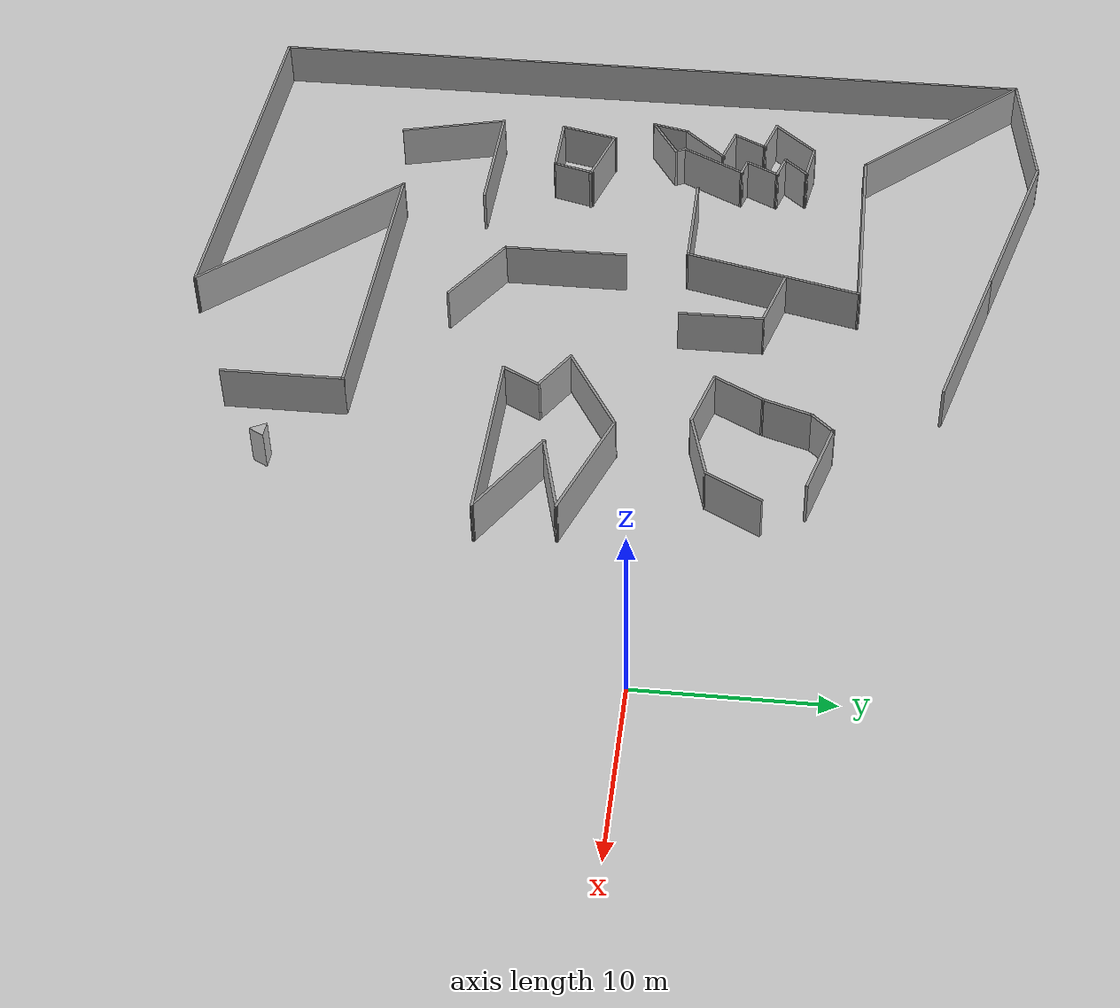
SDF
<sdf version="1.7">
 <world name="default">
  <model name="ground_plane">
   <static>1</static>
   <link name="link">
    <collision name="collision">
     <geometry><plane><normal>0 0 1</normal><size>100 100</size></plane></geometry>
     <surface><friction><ode><mu>100</mu><mu2>50</mu2></ode></friction></surface>
    </collision>
    <visual name="visual">
     <cast_shadows>0</cast_shadows>
     <geometry><plane><normal>0 0 1</normal><size>100 100</size></plane></geometry>
     <material>
      <script><uri>file://media/materials/scripts/gazebo.material</uri><name>Gazebo/Grey</name></script>
     </material>
    </visual>
   </link>
  </model>
  <model name="custommap4">
   <pose>0.895915 -3.48748 0 0 -0 0</pose>
   <link name="Wall_22">
    <collision name="Wall_22_Collision">
     <geometry><box><size>10 0.15 2.5</size></box></geometry>
     <pose>0 0 1.25 0 -0 0</pose>
    </collision>
    <visual name="Wall_22_Visual">
     <pose>0 0 1.25 0 -0 0</pose>
     <geometry><box><size>10 0.15 2.5</size></box></geometry>
     <material>
      <script><uri>file://media/materials/scripts/gazebo.material</uri><name>Gazebo/Grey</name></script>
      <ambient>1 1 1 1</ambient>
     </material>
     <meta><layer>0</layer></meta>
    </visual>
    <pose>-25.8376 19.3796 0 0 -0 2.87979</pose>
   </link>
   <link name="Wall_23">
    <collision name="Wall_23_Collision">
     <geometry><box><size>11.5 0.15 2.5</size></box></geometry>
     <pose>0 0 1.25 0 -0 0</pose>
    </collision>
    <visual name="Wall_23_Visual">
     <pose>0 0 1.25 0 -0 0</pose>
     <geometry><box><size>11.5 0.15 2.5</size></box></geometry>
     <material>
      <script><uri>file://media/materials/scripts/gazebo.material</uri><name>Gazebo/Grey</name></script>
      <ambient>1 1 1 1</ambient>
     </material>
     <meta><layer>0</layer></meta>
    </visual>
    <pose>-36.0764 22.1231 0 0 -0 2.87979</pose>
   </link>
   <link name="Wall_24">
    <collision name="Wall_24_Collision">
     <geometry><box><size>8.88754 0.15 2.5</size></box></geometry>
     <pose>0 0 1.25 0 -0 0</pose>
    </collision>
    <visual name="Wall_24_Visual">
     <pose>0 0 1.25 0 -0 0</pose>
     <geometry><box><size>8.88754 0.15 2.5</size></box></geometry>
     <material>
      <script><uri>file://media/materials/scripts/gazebo.material</uri><name>Gazebo/Grey</name></script>
      <ambient>1 1 1 1</ambient>
     </material>
     <meta><layer>0</layer></meta>
    </visual>
    <pose>-45.894 23.0571 0 0 -0 -3.01888</pose>
   </link>
   <link name="Wall_25">
    <collision name="Wall_25_Collision">
     <geometry><box><size>13 0.15 2.5</size></box></geometry>
     <pose>0 0 1.25 0 -0 0</pose>
    </collision>
    <visual name="Wall_25_Visual">
     <pose>0 0 1.25 0 -0 0</pose>
     <geometry><box><size>13 0.15 2.5</size></box></geometry>
     <material>
      <script><uri>file://media/materials/scripts/gazebo.material</uri><name>Gazebo/Grey</name></script>
      <ambient>1 1 1 1</ambient>
     </material>
     <meta><layer>0</layer></meta>
    </visual>
    <pose>-45.6867 17.9792 0 0 -0 -0.785398</pose>
   </link>
   <link name="Wall_26">
    <collision name="Wall_26_Collision">
     <geometry><box><size>12.5 0.15 2.5</size></box></geometry>
     <pose>0 0 1.25 0 -0 0</pose>
    </collision>
    <visual name="Wall_26_Visual">
     <pose>0 0 1.25 0 -0 0</pose>
     <geometry><box><size>12.5 0.15 2.5</size></box></geometry>
     <material>
      <script><uri>file://media/materials/scripts/gazebo.material</uri><name>Gazebo/Grey</name></script>
      <ambient>1 1 1 1</ambient>
     </material>
     <meta><layer>0</layer></meta>
    </visual>
    <pose>-34.9686 13.436 0 0 -0 0</pose>
   </link>
   <link name="Wall_27">
    <collision name="Wall_27_Collision">
     <geometry><box><size>10.25 0.15 2.5</size></box></geometry>
     <pose>0 0 1.25 0 -0 0</pose>
    </collision>
    <visual name="Wall_27_Visual">
     <pose>0 0 1.25 0 -0 0</pose>
     <geometry><box><size>10.25 0.15 2.5</size></box></geometry>
     <material>
      <script><uri>file://media/materials/scripts/gazebo.material</uri><name>Gazebo/Grey</name></script>
      <ambient>1 1 1 1</ambient>
     </material>
     <meta><layer>0</layer></meta>
    </visual>
    <pose>-30.1006 8.55808 0 0 -0 -1.8326</pose>
   </link>
   <link name="Wall_28">
    <collision name="Wall_28_Collision">
     <geometry><box><size>6.5 0.15 2.5</size></box></geometry>
     <pose>0 0 1.25 0 -0 0</pose>
    </collision>
    <visual name="Wall_28_Visual">
     <pose>0 0 1.25 0 -0 0</pose>
     <geometry><box><size>6.5 0.15 2.5</size></box></geometry>
     <material>
      <script><uri>file://media/materials/scripts/gazebo.material</uri><name>Gazebo/Grey</name></script>
      <ambient>1 1 1 1</ambient>
     </material>
     <meta><layer>0</layer></meta>
    </visual>
    <pose>-34.5826 3.68016 0 0 -0 3.14159</pose>
   </link>
   <link name="Wall_3">
    <collision name="Wall_3_Collision">
     <geometry><box><size>46.25 0.15 2.5</size></box></geometry>
     <pose>0 0 1.25 0 -0 0</pose>
    </collision>
    <visual name="Wall_3_Visual">
     <pose>0 0 1.25 0 -0 0</pose>
     <geometry><box><size>46.25 0.15 2.5</size></box></geometry>
     <material>
      <script><uri>file://media/materials/scripts/gazebo.material</uri><name>Gazebo/Grey</name></script>
      <ambient>1 1 1 1</ambient>
     </material>
     <meta><layer>0</layer></meta>
    </visual>
    <pose>-50.2299 -0.527672 0 0 -0 -1.5708</pose>
   </link>
   <link name="Wall_30">
    <collision name="Wall_30_Collision">
     <geometry><box><size>3.5 0.15 2.5</size></box></geometry>
     <pose>0 0 1.25 0 -0 0</pose>
    </collision>
    <visual name="Wall_30_Visual">
     <pose>0 0 1.25 0 -0 0</pose>
     <geometry><box><size>3.5 0.15 2.5</size></box></geometry>
     <material>
      <script><uri>file://media/materials/scripts/gazebo.material</uri><name>Gazebo/Grey</name></script>
      <ambient>1 1 1 1</ambient>
     </material>
     <meta><layer>0</layer></meta>
    </visual>
    <pose>-42.7705 -3.34404 0 0 -0 -1.8326</pose>
   </link>
   <link name="Wall_31">
    <collision name="Wall_31_Collision">
     <geometry><box><size>4 0.15 2.5</size></box></geometry>
     <pose>0 0 1.25 0 -0 0</pose>
    </collision>
    <visual name="Wall_31_Visual">
     <pose>0 0 1.25 0 -0 0</pose>
     <geometry><box><size>4 0.15 2.5</size></box></geometry>
     <material>
      <script><uri>file://media/materials/scripts/gazebo.material</uri><name>Gazebo/Grey</name></script>
      <ambient>1 1 1 1</ambient>
     </material>
     <meta><layer>0</layer></meta>
    </visual>
    <pose>-41.279 -4.96197 0 0 -0 0</pose>
   </link>
   <link name="Wall_32">
    <collision name="Wall_32_Collision">
     <geometry><box><size>2.53049 0.15 2.5</size></box></geometry>
     <pose>0 0 1.25 0 -0 0</pose>
    </collision>
    <visual name="Wall_32_Visual">
     <pose>0 0 1.25 0 -0 0</pose>
     <geometry><box><size>2.53049 0.15 2.5</size></box></geometry>
     <material>
      <script><uri>file://media/materials/scripts/gazebo.material</uri><name>Gazebo/Grey</name></script>
      <ambient>1 1 1 1</ambient>
     </material>
     <meta><layer>0</layer></meta>
    </visual>
    <pose>-39.0106 -3.82233 0 0 -0 1.27814</pose>
   </link>
   <link name="Wall_33">
    <collision name="Wall_33_Collision">
     <geometry><box><size>4 0.15 2.5</size></box></geometry>
     <pose>0 0 1.25 0 -0 0</pose>
    </collision>
    <visual name="Wall_33_Visual">
     <pose>0 0 1.25 0 -0 0</pose>
     <geometry><box><size>4 0.15 2.5</size></box></geometry>
     <material>
      <script><uri>file://media/materials/scripts/gazebo.material</uri><name>Gazebo/Grey</name></script>
      <ambient>1 1 1 1</ambient>
     </material>
     <meta><layer>0</layer></meta>
    </visual>
    <pose>-40.4452 -2.26584 0 0 -0 2.87979</pose>
   </link>
   <link name="Wall_35">
    <collision name="Wall_35_Collision">
     <geometry><box><size>6 0.15 2.5</size></box></geometry>
     <pose>0 0 1.25 0 -0 0</pose>
    </collision>
    <visual name="Wall_35_Visual">
     <pose>0 0 1.25 0 -0 0</pose>
     <geometry><box><size>6 0.15 2.5</size></box></geometry>
     <material>
      <script><uri>file://media/materials/scripts/gazebo.material</uri><name>Gazebo/Grey</name></script>
      <ambient>1 1 1 1</ambient>
     </material>
     <meta><layer>0</layer></meta>
    </visual>
    <pose>-19.3197 -0.340644 0 0 -0 -2.61799</pose>
   </link>
   <link name="Wall_36">
    <collision name="Wall_36_Collision">
     <geometry><box><size>3 0.15 2.5</size></box></geometry>
     <pose>0 0 1.25 0 -0 0</pose>
    </collision>
    <visual name="Wall_36_Visual">
     <pose>0 0 1.25 0 -0 0</pose>
     <geometry><box><size>3 0.15 2.5</size></box></geometry>
     <material>
      <script><uri>file://media/materials/scripts/gazebo.material</uri><name>Gazebo/Grey</name></script>
      <ambient>1 1 1 1</ambient>
     </material>
     <meta><layer>0</layer></meta>
    </visual>
    <pose>-20.6187 -2.51564 0 0 -0 -0.523599</pose>
   </link>
   <link name="Wall_37">
    <collision name="Wall_37_Collision">
     <geometry><box><size>2.5 0.15 2.5</size></box></geometry>
     <pose>0 0 1.25 0 -0 0</pose>
    </collision>
    <visual name="Wall_37_Visual">
     <pose>0 0 1.25 0 -0 0</pose>
     <geometry><box><size>2.5 0.15 2.5</size></box></geometry>
     <material>
      <script><uri>file://media/materials/scripts/gazebo.material</uri><name>Gazebo/Grey</name></script>
      <ambient>1 1 1 1</ambient>
     </material>
     <meta><layer>0</layer></meta>
    </visual>
    <pose>-19.9721 -4.24572 0 0 -0 -2.0944</pose>
   </link>
   <link name="Wall_38">
    <collision name="Wall_38_Collision">
     <geometry><box><size>10.75 0.15 2.5</size></box></geometry>
     <pose>0 0 1.25 0 -0 0</pose>
    </collision>
    <visual name="Wall_38_Visual">
     <pose>0 0 1.25 0 -0 0</pose>
     <geometry><box><size>10.75 0.15 2.5</size></box></geometry>
     <material>
      <script><uri>file://media/materials/scripts/gazebo.material</uri><name>Gazebo/Grey</name></script>
      <ambient>1 1 1 1</ambient>
     </material>
     <meta><layer>0</layer></meta>
    </visual>
    <pose>-15.2596 -5.2633 0 0 -0 0</pose>
   </link>
   <link name="Wall_39">
    <collision name="Wall_39_Collision">
     <geometry><box><size>6 0.15 2.5</size></box></geometry>
     <pose>0 0 1.25 0 -0 0</pose>
    </collision>
    <visual name="Wall_39_Visual">
     <pose>0 0 1.25 0 -0 0</pose>
     <geometry><box><size>6 0.15 2.5</size></box></geometry>
     <material>
      <script><uri>file://media/materials/scripts/gazebo.material</uri><name>Gazebo/Grey</name></script>
      <ambient>1 1 1 1</ambient>
     </material>
     <meta><layer>0</layer></meta>
    </visual>
    <pose>-12.4928 -3.8008 0 0 -0 2.61799</pose>
   </link>
   <link name="Wall_4">
    <collision name="Wall_4_Collision">
     <geometry><box><size>24 0.15 2.5</size></box></geometry>
     <pose>0 0 1.25 0 -0 0</pose>
    </collision>
    <visual name="Wall_4_Visual">
     <pose>0 0 1.25 0 -0 0</pose>
     <geometry><box><size>24 0.15 2.5</size></box></geometry>
     <material>
      <script><uri>file://media/materials/scripts/gazebo.material</uri><name>Gazebo/Grey</name></script>
      <ambient>1 1 1 1</ambient>
     </material>
     <meta><layer>0</layer></meta>
    </visual>
    <pose>-38.3049 -23.5777 0 0 -0 0</pose>
   </link>
   <link name="Wall_40">
    <collision name="Wall_40_Collision">
     <geometry><box><size>5 0.15 2.5</size></box></geometry>
     <pose>0 0 1.25 0 -0 0</pose>
    </collision>
    <visual name="Wall_40_Visual">
     <pose>0 0 1.25 0 -0 0</pose>
     <geometry><box><size>5 0.15 2.5</size></box></geometry>
     <material>
      <script><uri>file://media/materials/scripts/gazebo.material</uri><name>Gazebo/Grey</name></script>
      <ambient>1 1 1 1</ambient>
     </material>
     <meta><layer>0</layer></meta>
    </visual>
    <pose>-12.6835 -1.71067 0 0 -0 0.261799</pose>
   </link>
   <link name="Wall_41">
    <collision name="Wall_41_Collision">
     <geometry><box><size>6.96211 0.15 2.5</size></box></geometry>
     <pose>0 0 1.25 0 -0 0</pose>
    </collision>
    <visual name="Wall_41_Visual">
     <pose>0 0 1.25 0 -0 0</pose>
     <geometry><box><size>6.96211 0.15 2.5</size></box></geometry>
     <material>
      <script><uri>file://media/materials/scripts/gazebo.material</uri><name>Gazebo/Grey</name></script>
      <ambient>1 1 1 1</ambient>
     </material>
     <meta><layer>0</layer></meta>
    </visual>
    <pose>-13.5639 0.019412 0 0 -0 2.81198</pose>
   </link>
   <link name="Wall_43">
    <collision name="Wall_43_Collision">
     <geometry><box><size>7 0.15 2.5</size></box></geometry>
     <pose>0 0 1.25 0 -0 0</pose>
    </collision>
    <visual name="Wall_43_Visual">
     <pose>0 0 1.25 0 -0 0</pose>
     <geometry><box><size>7 0.15 2.5</size></box></geometry>
     <material>
      <script><uri>file://media/materials/scripts/gazebo.material</uri><name>Gazebo/Grey</name></script>
      <ambient>1 1 1 1</ambient>
     </material>
     <meta><layer>0</layer></meta>
    </visual>
    <pose>-30.945 -3.27959 0 0 -0 -1.5708</pose>
   </link>
   <link name="Wall_44">
    <collision name="Wall_44_Collision">
     <geometry><box><size>5.25 0.15 2.5</size></box></geometry>
     <pose>0 0 1.25 0 -0 0</pose>
    </collision>
    <visual name="Wall_44_Visual">
     <pose>0 0 1.25 0 -0 0</pose>
     <geometry><box><size>5.25 0.15 2.5</size></box></geometry>
     <material>
      <script><uri>file://media/materials/scripts/gazebo.material</uri><name>Gazebo/Grey</name></script>
      <ambient>1 1 1 1</ambient>
     </material>
     <meta><layer>0</layer></meta>
    </visual>
    <pose>-28.7367 -7.97959 0 0 -0 -0.523599</pose>
   </link>
   <link name="Wall_46">
    <collision name="Wall_46_Collision">
     <geometry><box><size>3.25 0.15 2.5</size></box></geometry>
     <pose>0 0 1.25 0 -0 0</pose>
    </collision>
    <visual name="Wall_46_Visual">
     <pose>0 0 1.25 0 -0 0</pose>
     <geometry><box><size>3.25 0.15 2.5</size></box></geometry>
     <material>
      <script><uri>file://media/materials/scripts/gazebo.material</uri><name>Gazebo/Grey</name></script>
      <ambient>1 1 1 1</ambient>
     </material>
     <meta><layer>0</layer></meta>
    </visual>
    <pose>-20.1654 7.34698 0 0 -0 -2.0944</pose>
   </link>
   <link name="Wall_47">
    <collision name="Wall_47_Collision">
     <geometry><box><size>3.75 0.15 2.5</size></box></geometry>
     <pose>0 0 1.25 0 -0 0</pose>
    </collision>
    <visual name="Wall_47_Visual">
     <pose>0 0 1.25 0 -0 0</pose>
     <geometry><box><size>3.75 0.15 2.5</size></box></geometry>
     <material>
      <script><uri>file://media/materials/scripts/gazebo.material</uri><name>Gazebo/Grey</name></script>
      <ambient>1 1 1 1</ambient>
     </material>
     <meta><layer>0</layer></meta>
    </visual>
    <pose>-19.2018 5.53877 0 0 -0 -0.261799</pose>
   </link>
   <link name="Wall_48">
    <collision name="Wall_48_Collision">
     <geometry><box><size>4.25 0.15 2.5</size></box></geometry>
     <pose>0 0 1.25 0 -0 0</pose>
    </collision>
    <visual name="Wall_48_Visual">
     <pose>0 0 1.25 0 -0 0</pose>
     <geometry><box><size>4.25 0.15 2.5</size></box></geometry>
     <material>
      <script><uri>file://media/materials/scripts/gazebo.material</uri><name>Gazebo/Grey</name></script>
      <ambient>1 1 1 1</ambient>
     </material>
     <meta><layer>0</layer></meta>
    </visual>
    <pose>-15.4829 5.60348 0 0 -0 0.261799</pose>
   </link>
   <link name="Wall_49">
    <collision name="Wall_49_Collision">
     <geometry><box><size>3.5 0.15 2.5</size></box></geometry>
     <pose>0 0 1.25 0 -0 0</pose>
    </collision>
    <visual name="Wall_49_Visual">
     <pose>0 0 1.25 0 -0 0</pose>
     <geometry><box><size>3.5 0.15 2.5</size></box></geometry>
     <material>
      <script><uri>file://media/materials/scripts/gazebo.material</uri><name>Gazebo/Grey</name></script>
      <ambient>1 1 1 1</ambient>
     </material>
     <meta><layer>0</layer></meta>
    </visual>
    <pose>-12.6653 7.58465 0 0 -0 1.0472</pose>
   </link>
   <link name="Wall_5">
    <collision name="Wall_5_Collision">
     <geometry><box><size>14.25 0.15 2.5</size></box></geometry>
     <pose>0 0 1.25 0 -0 0</pose>
    </collision>
    <visual name="Wall_5_Visual">
     <pose>0 0 1.25 0 -0 0</pose>
     <geometry><box><size>14.25 0.15 2.5</size></box></geometry>
     <material>
      <script><uri>file://media/materials/scripts/gazebo.material</uri><name>Gazebo/Grey</name></script>
      <ambient>1 1 1 1</ambient>
     </material>
     <meta><layer>0</layer></meta>
    </visual>
    <pose>-31.365 -18.5926 0 0 -0 2.35619</pose>
   </link>
   <link name="Wall_51">
    <collision name="Wall_51_Collision">
     <geometry><box><size>4.5 0.15 2.5</size></box></geometry>
     <pose>0 0 1.25 0 -0 0</pose>
    </collision>
    <visual name="Wall_51_Visual">
     <pose>0 0 1.25 0 -0 0</pose>
     <geometry><box><size>4.5 0.15 2.5</size></box></geometry>
     <material>
      <script><uri>file://media/materials/scripts/gazebo.material</uri><name>Gazebo/Grey</name></script>
      <ambient>1 1 1 1</ambient>
     </material>
     <meta><layer>0</layer></meta>
    </visual>
    <pose>-15.2287 11.8498 0 0 -0 2.87979</pose>
   </link>
   <link name="Wall_52">
    <collision name="Wall_52_Collision">
     <geometry><box><size>1.75 0.15 2.5</size></box></geometry>
     <pose>0 0 1.25 0 -0 0</pose>
    </collision>
    <visual name="Wall_52_Visual">
     <pose>0 0 1.25 0 -0 0</pose>
     <geometry><box><size>1.75 0.15 2.5</size></box></geometry>
     <material>
      <script><uri>file://media/materials/scripts/gazebo.material</uri><name>Gazebo/Grey</name></script>
      <ambient>1 1 1 1</ambient>
     </material>
     <meta><layer>0</layer></meta>
    </visual>
    <pose>-17.8953 11.8471 0 0 -0 -2.35619</pose>
   </link>
   <link name="Wall_53">
    <collision name="Wall_53_Collision">
     <geometry><box><size>2.90368 0.15 2.5</size></box></geometry>
     <pose>0 0 1.25 0 -0 0</pose>
    </collision>
    <visual name="Wall_53_Visual">
     <pose>0 0 1.25 0 -0 0</pose>
     <geometry><box><size>2.90368 0.15 2.5</size></box></geometry>
     <material>
      <script><uri>file://media/materials/scripts/gazebo.material</uri><name>Gazebo/Grey</name></script>
      <ambient>1 1 1 1</ambient>
     </material>
     <meta><layer>0</layer></meta>
    </visual>
    <pose>-18.9257 9.98536 0 0 -0 -1.9151</pose>
   </link>
   <link name="Wall_6">
    <collision name="Wall_6_Collision">
     <geometry><box><size>17.75 0.15 2.5</size></box></geometry>
     <pose>0 0 1.25 0 -0 0</pose>
    </collision>
    <visual name="Wall_6_Visual">
     <pose>0 0 1.25 0 -0 0</pose>
     <geometry><box><size>17.75 0.15 2.5</size></box></geometry>
     <material>
      <script><uri>file://media/materials/scripts/gazebo.material</uri><name>Gazebo/Grey</name></script>
      <ambient>1 1 1 1</ambient>
     </material>
     <meta><layer>0</layer></meta>
    </visual>
    <pose>-27.5501 -13.6075 0 0 -0 0</pose>
   </link>
   <link name="Wall_64">
    <collision name="Wall_64_Collision">
     <geometry><box><size>4 0.15 2.5</size></box></geometry>
     <pose>0 0 1.25 0 -0 0</pose>
    </collision>
    <visual name="Wall_64_Visual">
     <pose>0 0 1.25 0 -0 0</pose>
     <geometry><box><size>4 0.15 2.5</size></box></geometry>
     <material>
      <script><uri>file://media/materials/scripts/gazebo.material</uri><name>Gazebo/Grey</name></script>
      <ambient>1 1 1 1</ambient>
     </material>
     <meta><layer>0</layer></meta>
    </visual>
    <pose>-27.9465 8.76069 0 0 -0 -0.261799</pose>
   </link>
   <link name="Wall_65">
    <collision name="Wall_65_Collision">
     <geometry><box><size>4.75 0.15 2.5</size></box></geometry>
     <pose>0 0 1.25 0 -0 0</pose>
    </collision>
    <visual name="Wall_65_Visual">
     <pose>0 0 1.25 0 -0 0</pose>
     <geometry><box><size>4.75 0.15 2.5</size></box></geometry>
     <material>
      <script><uri>file://media/materials/scripts/gazebo.material</uri><name>Gazebo/Grey</name></script>
      <ambient>1 1 1 1</ambient>
     </material>
     <meta><layer>0</layer></meta>
    </visual>
    <pose>-26.087 5.96246 0 0 -0 -1.5708</pose>
   </link>
   <link name="Wall_69">
    <collision name="Wall_69_Collision">
     <geometry><box><size>6.25 0.15 2.5</size></box></geometry>
     <pose>0 0 1.25 0 -0 0</pose>
    </collision>
    <visual name="Wall_69_Visual">
     <pose>0 0 1.25 0 -0 0</pose>
     <geometry><box><size>6.25 0.15 2.5</size></box></geometry>
     <material>
      <script><uri>file://media/materials/scripts/gazebo.material</uri><name>Gazebo/Grey</name></script>
      <ambient>1 1 1 1</ambient>
     </material>
     <meta><layer>0</layer></meta>
    </visual>
    <pose>-42.6381 -11.6366 0 0 -0 1.8326</pose>
   </link>
   <link name="Wall_7">
    <collision name="Wall_7_Collision">
     <geometry><box><size>6.75 0.15 2.5</size></box></geometry>
     <pose>0 0 1.25 0 -0 0</pose>
    </collision>
    <visual name="Wall_7_Visual">
     <pose>0 0 1.25 0 -0 0</pose>
     <geometry><box><size>6.75 0.15 2.5</size></box></geometry>
     <material>
      <script><uri>file://media/materials/scripts/gazebo.material</uri><name>Gazebo/Grey</name></script>
      <ambient>1 1 1 1</ambient>
     </material>
     <meta><layer>0</layer></meta>
    </visual>
    <pose>-18.7501 -16.9075 0 0 -0 -1.5708</pose>
   </link>
   <link name="Wall_70">
    <collision name="Wall_70_Collision">
     <geometry><box><size>7.75 0.15 2.5</size></box></geometry>
     <pose>0 0 1.25 0 -0 0</pose>
    </collision>
    <visual name="Wall_70_Visual">
     <pose>0 0 1.25 0 -0 0</pose>
     <geometry><box><size>7.75 0.15 2.5</size></box></geometry>
     <material>
      <script><uri>file://media/materials/scripts/gazebo.material</uri><name>Gazebo/Grey</name></script>
      <ambient>1 1 1 1</ambient>
     </material>
     <meta><layer>0</layer></meta>
    </visual>
    <pose>-39.6275 -8.69052 0 0 -0 0</pose>
   </link>
   <link name="Wall_72">
    <collision name="Wall_72_Collision">
     <geometry><box><size>3.5 0.15 2.5</size></box></geometry>
     <pose>0 0 1.25 0 -0 0</pose>
    </collision>
    <visual name="Wall_72_Visual">
     <pose>0 0 1.25 0 -0 0</pose>
     <geometry><box><size>3.5 0.15 2.5</size></box></geometry>
     <material>
      <script><uri>file://media/materials/scripts/gazebo.material</uri><name>Gazebo/Grey</name></script>
      <ambient>1 1 1 1</ambient>
     </material>
     <meta><layer>0</layer></meta>
    </visual>
    <pose>-43.44 9.13233 0 0 -0 -2.35619</pose>
   </link>
   <link name="Wall_73">
    <collision name="Wall_73_Collision">
     <geometry><box><size>2.5 0.15 2.5</size></box></geometry>
     <pose>0 0 1.25 0 -0 0</pose>
    </collision>
    <visual name="Wall_73_Visual">
     <pose>0 0 1.25 0 -0 0</pose>
     <geometry><box><size>2.5 0.15 2.5</size></box></geometry>
     <material>
      <script><uri>file://media/materials/scripts/gazebo.material</uri><name>Gazebo/Grey</name></script>
      <ambient>1 1 1 1</ambient>
     </material>
     <meta><layer>0</layer></meta>
    </visual>
    <pose>-43.4894 7.64382 0 0 -0 -0.261799</pose>
   </link>
   <link name="Wall_74">
    <collision name="Wall_74_Collision">
     <geometry><box><size>2.25 0.15 2.5</size></box></geometry>
     <pose>0 0 1.25 0 -0 0</pose>
    </collision>
    <visual name="Wall_74_Visual">
     <pose>0 0 1.25 0 -0 0</pose>
     <geometry><box><size>2.25 0.15 2.5</size></box></geometry>
     <material>
      <script><uri>file://media/materials/scripts/gazebo.material</uri><name>Gazebo/Grey</name></script>
      <ambient>1 1 1 1</ambient>
     </material>
     <meta><layer>0</layer></meta>
    </visual>
    <pose>-42.8794 6.43038 0 0 -0 -2.0944</pose>
   </link>
   <link name="Wall_75">
    <collision name="Wall_75_Collision">
     <geometry><box><size>2.5 0.15 2.5</size></box></geometry>
     <pose>0 0 1.25 0 -0 0</pose>
    </collision>
    <visual name="Wall_75_Visual">
     <pose>0 0 1.25 0 -0 0</pose>
     <geometry><box><size>2.5 0.15 2.5</size></box></geometry>
     <material>
      <script><uri>file://media/materials/scripts/gazebo.material</uri><name>Gazebo/Grey</name></script>
      <ambient>1 1 1 1</ambient>
     </material>
     <meta><layer>0</layer></meta>
    </visual>
    <pose>-42.2695 5.21694 0 0 -0 -0.261799</pose>
   </link>
   <link name="Wall_76">
    <collision name="Wall_76_Collision">
     <geometry><box><size>3.5 0.15 2.5</size></box></geometry>
     <pose>0 0 1.25 0 -0 0</pose>
    </collision>
    <visual name="Wall_76_Visual">
     <pose>0 0 1.25 0 -0 0</pose>
     <geometry><box><size>3.5 0.15 2.5</size></box></geometry>
     <material>
      <script><uri>file://media/materials/scripts/gazebo.material</uri><name>Gazebo/Grey</name></script>
      <ambient>1 1 1 1</ambient>
     </material>
     <meta><layer>0</layer></meta>
    </visual>
    <pose>-42.3189 3.72842 0 0 -0 -2.35619</pose>
   </link>
   <link name="Wall_77">
    <collision name="Wall_77_Collision">
     <geometry><box><size>2.25 0.15 2.5</size></box></geometry>
     <pose>0 0 1.25 0 -0 0</pose>
    </collision>
    <visual name="Wall_77_Visual">
     <pose>0 0 1.25 0 -0 0</pose>
     <geometry><box><size>2.25 0.15 2.5</size></box></geometry>
     <material>
      <script><uri>file://media/materials/scripts/gazebo.material</uri><name>Gazebo/Grey</name></script>
      <ambient>1 1 1 1</ambient>
     </material>
     <meta><layer>0</layer></meta>
    </visual>
    <pose>-43.7751 1.5298 0 0 -0 -1.8326</pose>
   </link>
   <link name="Wall_78">
    <collision name="Wall_78_Collision">
     <geometry><box><size>3.25 0.15 2.5</size></box></geometry>
     <pose>0 0 1.25 0 -0 0</pose>
    </collision>
    <visual name="Wall_78_Visual">
     <pose>0 0 1.25 0 -0 0</pose>
     <geometry><box><size>3.25 0.15 2.5</size></box></geometry>
     <material>
      <script><uri>file://media/materials/scripts/gazebo.material</uri><name>Gazebo/Grey</name></script>
      <ambient>1 1 1 1</ambient>
     </material>
     <meta><layer>0</layer></meta>
    </visual>
    <pose>-42.7045 1.29057 0 0 -0 0.523599</pose>
   </link>
   <link name="Wall_79">
    <collision name="Wall_79_Collision">
     <geometry><box><size>0.75 0.15 2.5</size></box></geometry>
     <pose>0 0 1.25 0 -0 0</pose>
    </collision>
    <visual name="Wall_79_Visual">
     <pose>0 0 1.25 0 -0 0</pose>
     <geometry><box><size>0.75 0.15 2.5</size></box></geometry>
     <material>
      <script><uri>file://media/materials/scripts/gazebo.material</uri><name>Gazebo/Grey</name></script>
      <ambient>1 1 1 1</ambient>
     </material>
     <meta><layer>0</layer></meta>
    </visual>
    <pose>-41.5122 2.32538 0 0 -0 2.0944</pose>
   </link>
   <link name="Wall_80">
    <collision name="Wall_80_Collision">
     <geometry><box><size>4.25 0.15 2.5</size></box></geometry>
     <pose>0 0 1.25 0 -0 0</pose>
    </collision>
    <visual name="Wall_80_Visual">
     <pose>0 0 1.25 0 -0 0</pose>
     <geometry><box><size>4.25 0.15 2.5</size></box></geometry>
     <material>
      <script><uri>file://media/materials/scripts/gazebo.material</uri><name>Gazebo/Grey</name></script>
      <ambient>1 1 1 1</ambient>
     </material>
     <meta><layer>0</layer></meta>
    </visual>
    <pose>-40.6372 4.36054 0 0 -0 1.0472</pose>
   </link>
   <link name="Wall_81">
    <collision name="Wall_81_Collision">
     <geometry><box><size>1.25 0.15 2.5</size></box></geometry>
     <pose>0 0 1.25 0 -0 0</pose>
    </collision>
    <visual name="Wall_81_Visual">
     <pose>0 0 1.25 0 -0 0</pose>
     <geometry><box><size>1.25 0.15 2.5</size></box></geometry>
     <material>
      <script><uri>file://media/materials/scripts/gazebo.material</uri><name>Gazebo/Grey</name></script>
      <ambient>1 1 1 1</ambient>
     </material>
     <meta><layer>0</layer></meta>
    </visual>
    <pose>-40.1434 6.27824 0 0 -0 2.87979</pose>
   </link>
   <link name="Wall_82">
    <collision name="Wall_82_Collision">
     <geometry><box><size>2.25 0.15 2.5</size></box></geometry>
     <pose>0 0 1.25 0 -0 0</pose>
    </collision>
    <visual name="Wall_82_Visual">
     <pose>0 0 1.25 0 -0 0</pose>
     <geometry><box><size>2.25 0.15 2.5</size></box></geometry>
     <material>
      <script><uri>file://media/materials/scripts/gazebo.material</uri><name>Gazebo/Grey</name></script>
      <ambient>1 1 1 1</ambient>
     </material>
     <meta><layer>0</layer></meta>
    </visual>
    <pose>-40.1497 7.32992 0 0 -0 1.0472</pose>
   </link>
   <link name="Wall_83">
    <collision name="Wall_83_Collision">
     <geometry><box><size>1.75 0.15 2.5</size></box></geometry>
     <pose>0 0 1.25 0 -0 0</pose>
    </collision>
    <visual name="Wall_83_Visual">
     <pose>0 0 1.25 0 -0 0</pose>
     <geometry><box><size>1.75 0.15 2.5</size></box></geometry>
     <material>
      <script><uri>file://media/materials/scripts/gazebo.material</uri><name>Gazebo/Grey</name></script>
      <ambient>1 1 1 1</ambient>
     </material>
     <meta><layer>0</layer></meta>
    </visual>
    <pose>-40.3974 8.4463 0 0 -0 2.87979</pose>
   </link>
   <link name="Wall_84">
    <collision name="Wall_84_Collision">
     <geometry><box><size>2 0.15 2.5</size></box></geometry>
     <pose>0 0 1.25 0 -0 0</pose>
    </collision>
    <visual name="Wall_84_Visual">
     <pose>0 0 1.25 0 -0 0</pose>
     <geometry><box><size>2 0.15 2.5</size></box></geometry>
     <material>
      <script><uri>file://media/materials/scripts/gazebo.material</uri><name>Gazebo/Grey</name></script>
      <ambient>1 1 1 1</ambient>
     </material>
     <meta><layer>0</layer></meta>
    </visual>
    <pose>-40.5161 9.30743 0 0 -0 0.785398</pose>
   </link>
   <link name="Wall_85">
    <collision name="Wall_85_Collision">
     <geometry><box><size>2.56976 0.15 2.5</size></box></geometry>
     <pose>0 0 1.25 0 -0 0</pose>
    </collision>
    <visual name="Wall_85_Visual">
     <pose>0 0 1.25 0 -0 0</pose>
     <geometry><box><size>2.56976 0.15 2.5</size></box></geometry>
     <material>
      <script><uri>file://media/materials/scripts/gazebo.material</uri><name>Gazebo/Grey</name></script>
      <ambient>1 1 1 1</ambient>
     </material>
     <meta><layer>0</layer></meta>
    </visual>
    <pose>-41.0588 10.1391 0 0 -0 2.99426</pose>
   </link>
   <static>1</static>
  </model>
  <model name="Prism">
   <pose>-15.9086 -20.6716 0.5 0 -0 0</pose>
   <static>1</static>
   <link name="link">
    <collision name="collision">
     <geometry>
      <mesh><uri>model://prism_model/meshes/Triangular_Prism_v2.obj</uri><scale>0.1 0.1 0.1</scale></mesh>
     </geometry>
    </collision>
    <visual name="visual">
     <geometry>
      <mesh><uri>model://prism_model/meshes/Triangular_Prism_v2.obj</uri><scale>0.1 0.1 0.1</scale></mesh>
     </geometry>
    </visual>
   </link>
  </model>
 </world>
</sdf>
